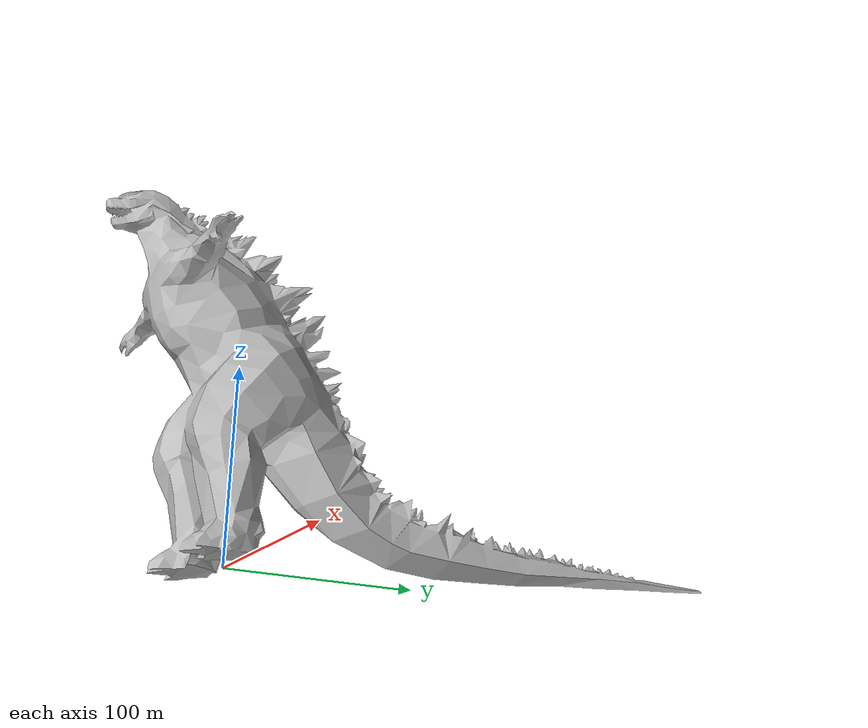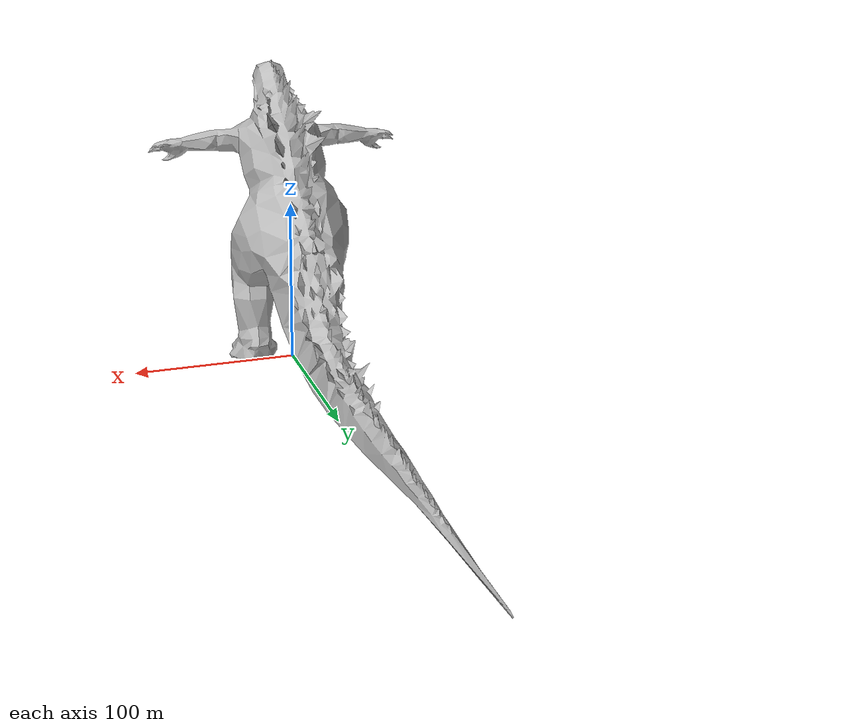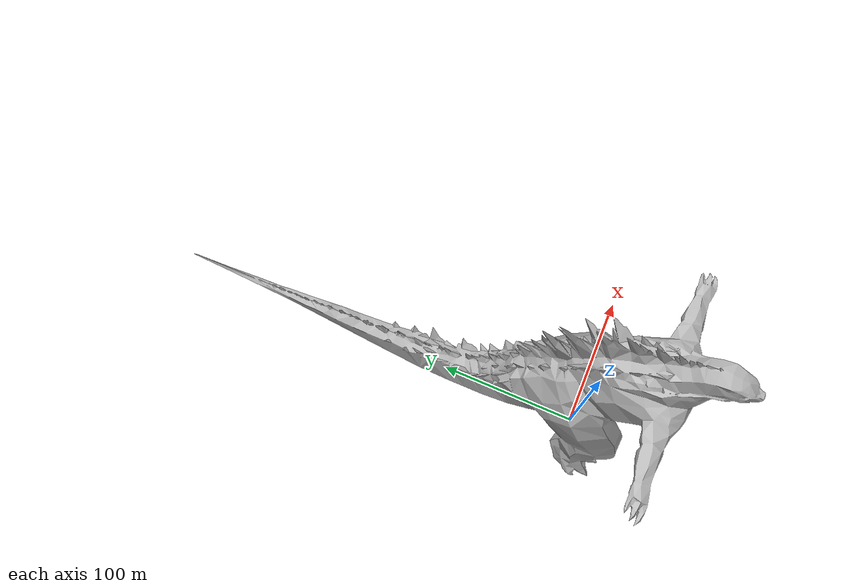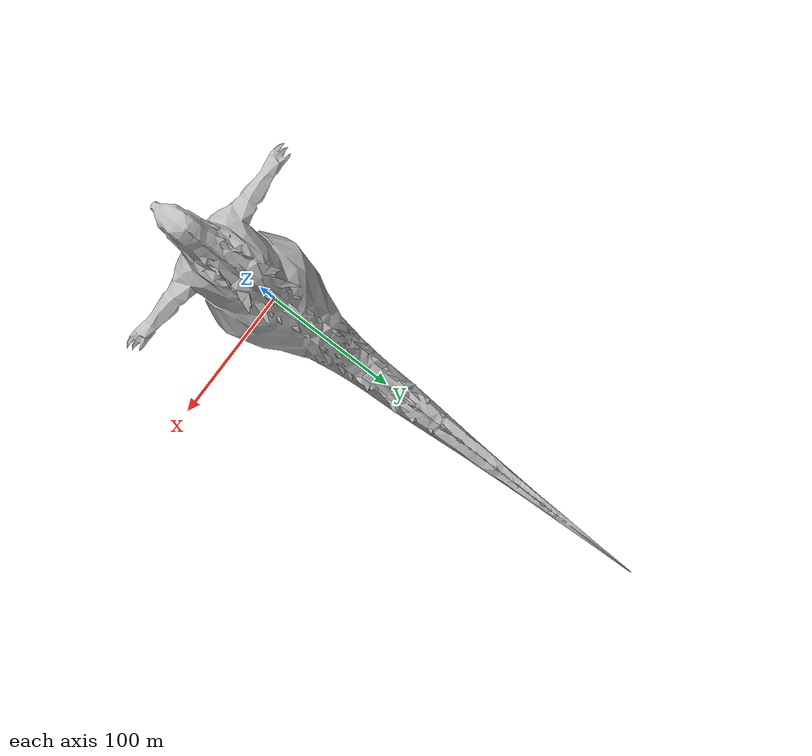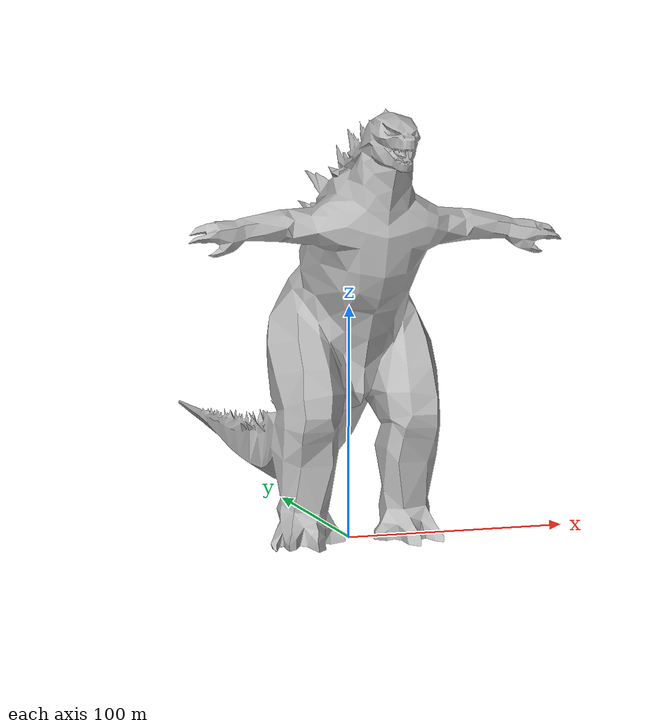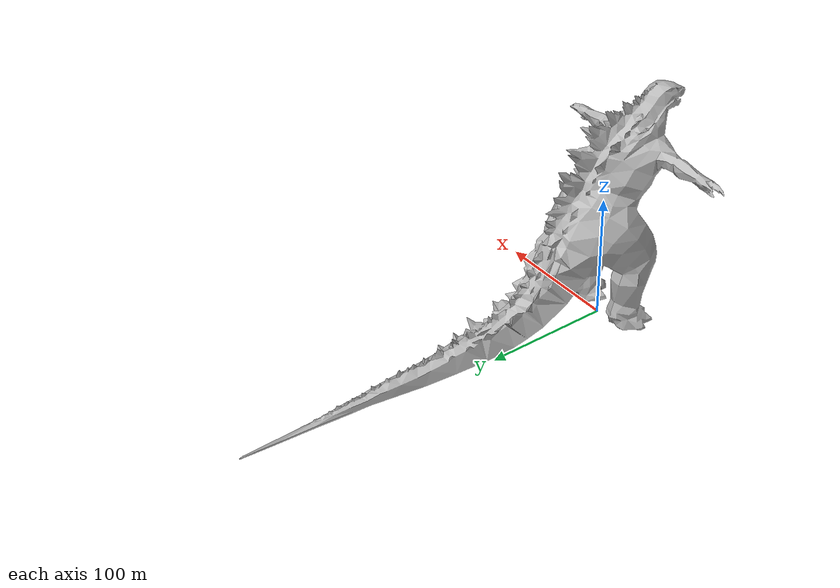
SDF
<?xml version='1.0'?>
<sdf version='1.7'>
  <model name='godzilla'>
    <link name='link'>
      <inertial>
        <mass>100</mass>
        <inertia>
          <ixx>0.00001</ixx>
          <ixy>0</ixy>
          <ixz>0</ixz>
          <iyy>0.00001</iyy>
          <iyz>0</iyz>
          <izz>0.00001</izz>
        </inertia>
        <pose>0 0 0 0 -0 0</pose>
      </inertial>
      <self_collide>0</self_collide>
      <enable_wind>0</enable_wind>
      <kinematic>0</kinematic>
      <pose>0 0 0 0 -0 0</pose>
      <gravity>1</gravity>
      <visual name="visual">
        <geometry>
          <mesh>
            <uri>model://godzilla/meshes/godzilla.dae</uri>
          </mesh>
        </geometry>
        <material>
          <script>
            <name>godzillaMat/Diffuse</name>
            <uri>model://godzilla/materials/scripts</uri>
            <uri>model://godzilla/materials/textures</uri>
          </script>
          <shader type='pixel'>
            <normal_map>__default__</normal_map>
          </shader>
        </material>
      </visual>
      <collision name="collision">
        <geometry>
          <mesh>
            <uri>model://godzilla/meshes/godzilla.dae</uri>
          </mesh>
        </geometry>
      </collision>
    </link>
    <static>1</static>
    <allow_auto_disable>1</allow_auto_disable>
  </model>
</sdf>
